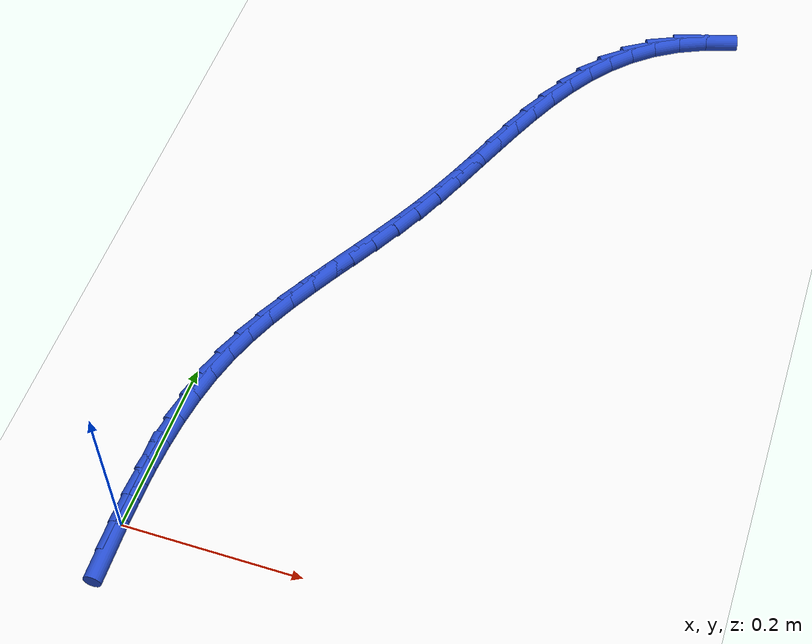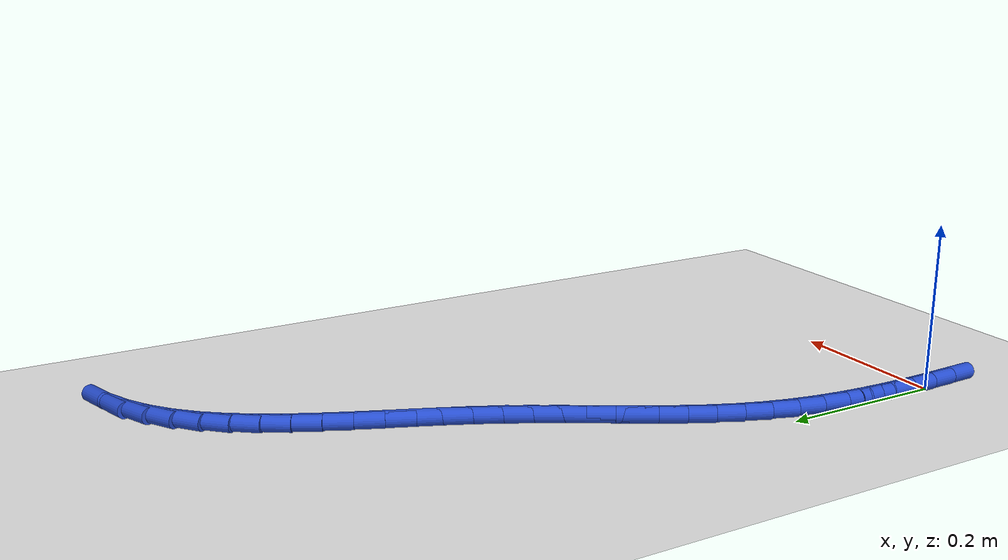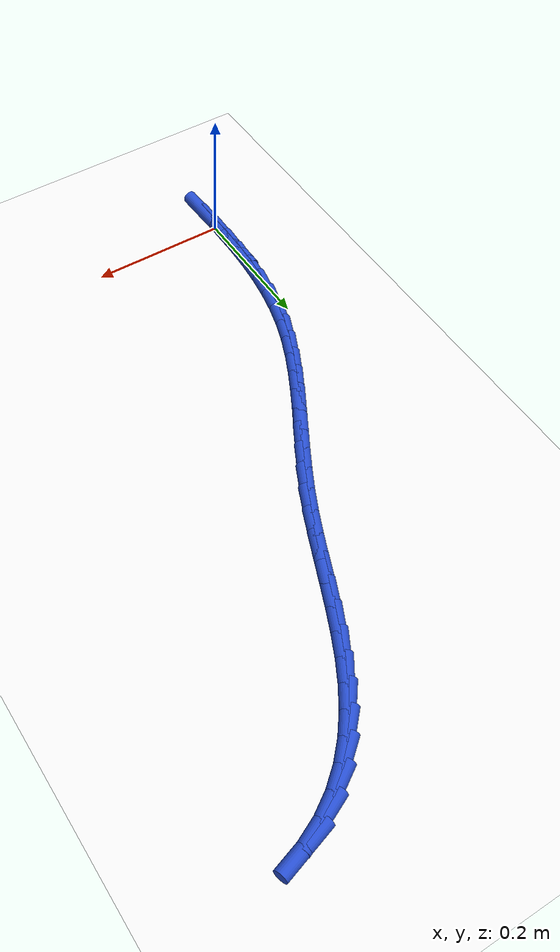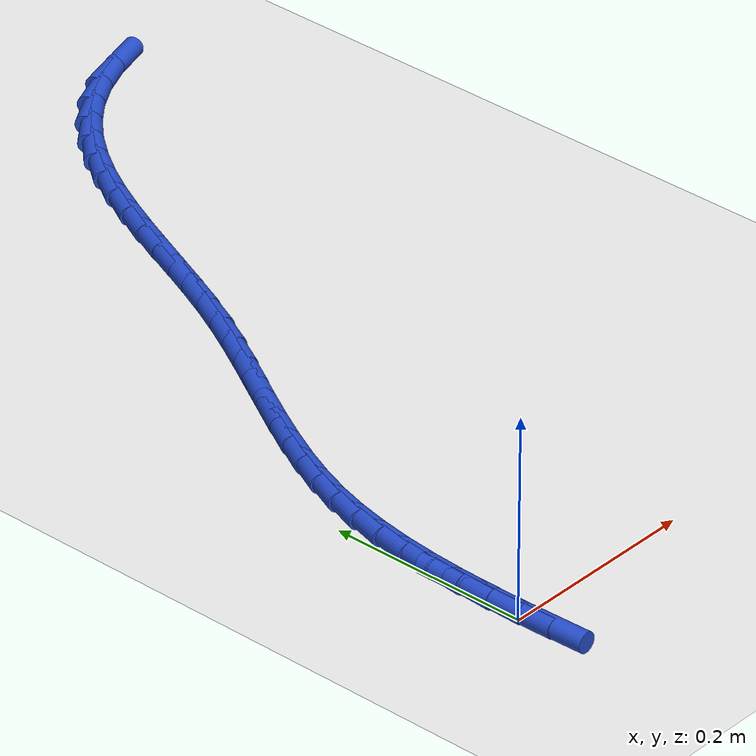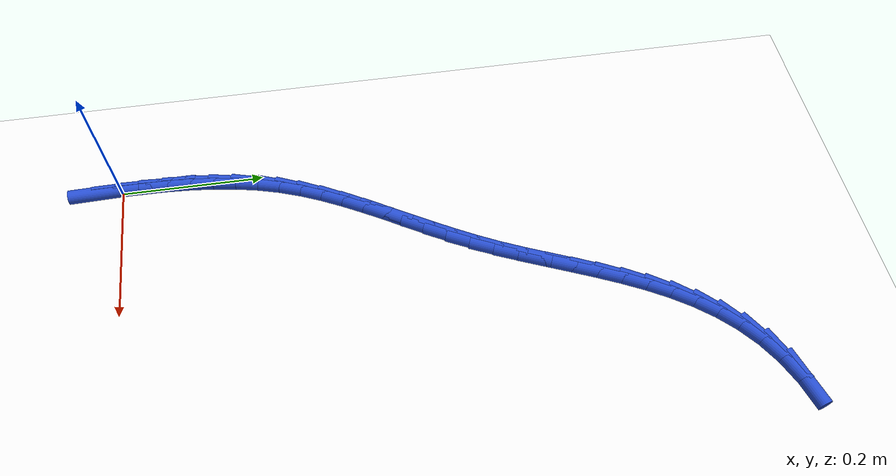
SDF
<sdf version="1.6">
 <world name="default">
  <model name="ground_plane">
   <static>1</static>
   <link name="link">
    <collision name="collision">
     <geometry><plane><normal>0 0 1</normal><size>100 100</size></plane></geometry>
     <surface><friction><ode><mu>100</mu><mu2>50</mu2></ode></friction></surface>
    </collision>
    <visual name="visual">
     <cast_shadows>0</cast_shadows>
     <geometry><plane><normal>0 0 1</normal><size>100 100</size></plane></geometry>
     <material>
      <script><uri>file://media/materials/scripts/gazebo.material</uri><name>Gazebo/WhiteGlow</name></script>
     </material>
    </visual>
   </link>
  </model>
  <model name="line">
   <link name="link_0">
    <pose>-9.107298248878237e-18 -6.245004513516506e-17 0.01 0 1.57 -1.5658944839849958</pose>
    <collision name="collision">
     <geometry><cylinder><radius>0.01</radius><length>0.08</length></cylinder></geometry>
    </collision>
    <visual name="visual">
     <material>
      <script><name>Gazebo/Blue</name><uri>file://media/materials/scripts/gazebo.material</uri></script>
     </material>
     <geometry><cylinder><radius>0.01</radius><length>0.08</length></cylinder></geometry>
    </visual>
   </link>
   <link name="link_1">
    <pose>-0.00016155652832458892 0.03295806100365336 0.01 0 1.57 1.5474566577063693</pose>
    <collision name="collision">
     <geometry><cylinder><radius>0.01</radius><length>0.08</length></cylinder></geometry>
    </collision>
    <visual name="visual">
     <material>
      <script><name>Gazebo/Blue</name><uri>file://media/materials/scripts/gazebo.material</uri></script>
     </material>
     <geometry><cylinder><radius>0.01</radius><length>0.08</length></cylinder></geometry>
    </visual>
   </link>
   <link name="link_2">
    <pose>0.0006087739015508442 0.06595726700076039 0.01 0 1.57 1.5124248729891052</pose>
    <collision name="collision">
     <geometry><cylinder><radius>0.01</radius><length>0.08</length></cylinder></geometry>
    </collision>
    <visual name="visual">
     <material>
      <script><name>Gazebo/Blue</name><uri>file://media/materials/scripts/gazebo.material</uri></script>
     </material>
     <geometry><cylinder><radius>0.01</radius><length>0.08</length></cylinder></geometry>
    </visual>
   </link>
   <link name="link_3">
    <pose>0.002529834421990248 0.09883083909902339 0.01 0 1.57 1.4701395982767924</pose>
    <collision name="collision">
     <geometry><cylinder><radius>0.01</radius><length>0.08</length></cylinder></geometry>
    </collision>
    <visual name="visual">
     <material>
      <script><name>Gazebo/Blue</name><uri>file://media/materials/scripts/gazebo.material</uri></script>
     </material>
     <geometry><cylinder><radius>0.01</radius><length>0.08</length></cylinder></geometry>
    </visual>
   </link>
   <link name="link_4">
    <pose>0.005820468165357586 0.13141199840614484 0.01 0 1.57 1.4200571307159806</pose>
    <collision name="collision">
     <geometry><cylinder><radius>0.01</radius><length>0.08</length></cylinder></geometry>
    </collision>
    <visual name="visual">
     <material>
      <script><name>Gazebo/Blue</name><uri>file://media/materials/scripts/gazebo.material</uri></script>
     </material>
     <geometry><cylinder><radius>0.01</radius><length>0.08</length></cylinder></geometry>
    </visual>
   </link>
   <link name="link_5">
    <pose>0.010699518264016817 0.16353396602982717 0.01 0 1.57 1.3616111288394246</pose>
    <collision name="collision">
     <geometry><cylinder><radius>0.01</radius><length>0.08</length></cylinder></geometry>
    </collision>
    <visual name="visual">
     <material>
      <script><name>Gazebo/Blue</name><uri>file://media/materials/scripts/gazebo.material</uri></script>
     </material>
     <geometry><cylinder><radius>0.01</radius><length>0.08</length></cylinder></geometry>
    </visual>
   </link>
   <link name="link_6">
    <pose>0.017385827850331905 0.19502996307777282 0.01 0 1.57 1.294306598906461</pose>
    <collision name="collision">
     <geometry><cylinder><radius>0.01</radius><length>0.08</length></cylinder></geometry>
    </collision>
    <visual name="visual">
     <material>
      <script><name>Gazebo/Blue</name><uri>file://media/materials/scripts/gazebo.material</uri></script>
     </material>
     <geometry><cylinder><radius>0.01</radius><length>0.08</length></cylinder></geometry>
    </visual>
   </link>
   <link name="link_7">
    <pose>0.02609812848399147 0.2257332823142468 0.01 0 1.57 1.2224607399121636</pose>
    <collision name="collision">
     <geometry><cylinder><radius>0.01</radius><length>0.08</length></cylinder></geometry>
    </collision>
    <visual name="visual">
     <material>
      <script><name>Gazebo/Blue</name><uri>file://media/materials/scripts/gazebo.material</uri></script>
     </material>
     <geometry><cylinder><radius>0.01</radius><length>0.08</length></cylinder></geometry>
    </visual>
   </link>
   <link name="link_8">
    <pose>0.036928890658805155 0.2555583065548617 0.01 0 1.57 1.160038678555661</pose>
    <collision name="collision">
     <geometry><cylinder><radius>0.01</radius><length>0.08</length></cylinder></geometry>
    </collision>
    <visual name="visual">
     <material>
      <script><name>Gazebo/Blue</name><uri>file://media/materials/scripts/gazebo.material</uri></script>
     </material>
     <geometry><cylinder><radius>0.01</radius><length>0.08</length></cylinder></geometry>
    </visual>
   </link>
   <link name="link_9">
    <pose>0.04960194979171867 0.2846561712285821 0.01 0 1.57 1.1102378742927024</pose>
    <collision name="collision">
     <geometry><cylinder><radius>0.01</radius><length>0.08</length></cylinder></geometry>
    </collision>
    <visual name="visual">
     <material>
      <script><name>Gazebo/Blue</name><uri>file://media/materials/scripts/gazebo.material</uri></script>
     </material>
     <geometry><cylinder><radius>0.01</radius><length>0.08</length></cylinder></geometry>
    </visual>
   </link>
   <link name="link_10">
    <pose>0.06377422615985905 0.31322098742029647 0.01 0 1.57 1.073295075942822</pose>
    <collision name="collision">
     <geometry><cylinder><radius>0.01</radius><length>0.08</length></cylinder></geometry>
    </collision>
    <visual name="visual">
     <material>
      <script><name>Gazebo/Blue</name><uri>file://media/materials/scripts/gazebo.material</uri></script>
     </material>
     <geometry><cylinder><radius>0.01</radius><length>0.08</length></cylinder></geometry>
    </visual>
   </link>
   <link name="link_11">
    <pose>0.0791026400403533 0.3414468662148935 0.01 0 1.57 1.0490994446726534</pose>
    <collision name="collision">
     <geometry><cylinder><radius>0.01</radius><length>0.08</length></cylinder></geometry>
    </collision>
    <visual name="visual">
     <material>
      <script><name>Gazebo/Blue</name><uri>file://media/materials/scripts/gazebo.material</uri></script>
     </material>
     <geometry><cylinder><radius>0.01</radius><length>0.08</length></cylinder></geometry>
    </visual>
   </link>
   <link name="link_12">
    <pose>0.09524411171032846 0.3695279186972616 0.01 0 1.57 1.0373786063809063</pose>
    <collision name="collision">
     <geometry><cylinder><radius>0.01</radius><length>0.08</length></cylinder></geometry>
    </collision>
    <visual name="visual">
     <material>
      <script><name>Gazebo/Blue</name><uri>file://media/materials/scripts/gazebo.material</uri></script>
     </material>
     <geometry><cylinder><radius>0.01</radius><length>0.08</length></cylinder></geometry>
    </visual>
   </link>
   <link name="link_13">
    <pose>0.11185556144691154 0.39765825595228954 0.01 0 1.57 1.0378185432117668</pose>
    <collision name="collision">
     <geometry><cylinder><radius>0.01</radius><length>0.08</length></cylinder></geometry>
    </collision>
    <visual name="visual">
     <material>
      <script><name>Gazebo/Blue</name><uri>file://media/materials/scripts/gazebo.material</uri></script>
     </material>
     <geometry><cylinder><radius>0.01</radius><length>0.08</length></cylinder></geometry>
    </visual>
   </link>
   <link name="link_14">
    <pose>0.1285939095272296 0.4260319890648658 0.01 0 1.57 1.050118261876973</pose>
    <collision name="collision">
     <geometry><cylinder><radius>0.01</radius><length>0.08</length></cylinder></geometry>
    </collision>
    <visual name="visual">
     <material>
      <script><name>Gazebo/Blue</name><uri>file://media/materials/scripts/gazebo.material</uri></script>
     </material>
     <geometry><cylinder><radius>0.01</radius><length>0.08</length></cylinder></geometry>
    </visual>
   </link>
   <link name="link_15">
    <pose>0.14511607622840958 0.45484322911987884 0.01 0 1.57 1.0739878810053047</pose>
    <collision name="collision">
     <geometry><cylinder><radius>0.01</radius><length>0.08</length></cylinder></geometry>
    </collision>
    <visual name="visual">
     <material>
      <script><name>Gazebo/Blue</name><uri>file://media/materials/scripts/gazebo.material</uri></script>
     </material>
     <geometry><cylinder><radius>0.01</radius><length>0.08</length></cylinder></geometry>
    </visual>
   </link>
   <link name="link_16">
    <pose>0.16107898182757863 0.4842860872022175 0.01 0 1.57 1.108871123853095</pose>
    <collision name="collision">
     <geometry><cylinder><radius>0.01</radius><length>0.08</length></cylinder></geometry>
    </collision>
    <visual name="visual">
     <material>
      <script><name>Gazebo/Blue</name><uri>file://media/materials/scripts/gazebo.material</uri></script>
     </material>
     <geometry><cylinder><radius>0.01</radius><length>0.08</length></cylinder></geometry>
    </visual>
   </link>
   <link name="link_17">
    <pose>0.1761458402041488 0.5145500088563273 0.01 0 1.57 1.1441048032050112</pose>
    <collision name="collision">
     <geometry><cylinder><radius>0.01</radius><length>0.08</length></cylinder></geometry>
    </collision>
    <visual name="visual">
     <material>
      <script><name>Gazebo/Blue</name><uri>file://media/materials/scripts/gazebo.material</uri></script>
     </material>
     <geometry><cylinder><radius>0.01</radius><length>0.08</length></cylinder></geometry>
    </visual>
   </link>
   <link name="link_18">
    <pose>0.1902671025750306 0.5456115063407476 0.01 0 1.57 1.1656597654194376</pose>
    <collision name="collision">
     <geometry><cylinder><radius>0.01</radius><length>0.08</length></cylinder></geometry>
    </collision>
    <visual name="visual">
     <material>
      <script><name>Gazebo/Blue</name><uri>file://media/materials/scripts/gazebo.material</uri></script>
     </material>
     <geometry><cylinder><radius>0.01</radius><length>0.08</length></cylinder></geometry>
    </visual>
   </link>
   <link name="link_19">
    <pose>0.20379303893328274 0.5771507003428037 0.01 0 1.57 1.1729823307309297</pose>
    <collision name="collision">
     <geometry><cylinder><radius>0.01</radius><length>0.08</length></cylinder></geometry>
    </collision>
    <visual name="visual">
     <material>
      <script><name>Gazebo/Blue</name><uri>file://media/materials/scripts/gazebo.material</uri></script>
     </material>
     <geometry><cylinder><radius>0.01</radius><length>0.08</length></cylinder></geometry>
    </visual>
   </link>
   <link name="link_20">
    <pose>0.21710350393702937 0.6088257800001147 0.01 0 1.57 1.1662249180799666</pose>
    <collision name="collision">
     <geometry><cylinder><radius>0.01</radius><length>0.08</length></cylinder></geometry>
    </collision>
    <visual name="visual">
     <material>
      <script><name>Gazebo/Blue</name><uri>file://media/materials/scripts/gazebo.material</uri></script>
     </material>
     <geometry><cylinder><radius>0.01</radius><length>0.08</length></cylinder></geometry>
    </visual>
   </link>
   <link name="link_21">
    <pose>0.23057835224439466 0.6402949344502994 0.01 0 1.57 1.1451369291719409</pose>
    <collision name="collision">
     <geometry><cylinder><radius>0.01</radius><length>0.08</length></cylinder></geometry>
    </collision>
    <visual name="visual">
     <material>
      <script><name>Gazebo/Blue</name><uri>file://media/materials/scripts/gazebo.material</uri></script>
     </material>
     <geometry><cylinder><radius>0.01</radius><length>0.08</length></cylinder></geometry>
    </visual>
   </link>
   <link name="link_22">
    <pose>0.24459743851350257 0.6712163528309769 0.01 0 1.57 1.1090887185943108</pose>
    <collision name="collision">
     <geometry><cylinder><radius>0.01</radius><length>0.08</length></cylinder></geometry>
    </collision>
    <visual name="visual">
     <material>
      <script><name>Gazebo/Blue</name><uri>file://media/materials/scripts/gazebo.material</uri></script>
     </material>
     <geometry><cylinder><radius>0.01</radius><length>0.08</length></cylinder></geometry>
    </visual>
   </link>
   <link name="link_23">
    <pose>0.25954061740247736 0.7012482242797664 0.01 0 1.57 1.05717234348854</pose>
    <collision name="collision">
     <geometry><cylinder><radius>0.01</radius><length>0.08</length></cylinder></geometry>
    </collision>
    <visual name="visual">
     <material>
      <script><name>Gazebo/Blue</name><uri>file://media/materials/scripts/gazebo.material</uri></script>
     </material>
     <geometry><cylinder><radius>0.01</radius><length>0.08</length></cylinder></geometry>
    </visual>
   </link>
   <link name="link_24">
    <pose>0.2757877435694432 0.7300487379342866 0.01 0 1.57 0.9884248001463394</pose>
    <collision name="collision">
     <geometry><cylinder><radius>0.01</radius><length>0.08</length></cylinder></geometry>
    </collision>
    <visual name="visual">
     <material>
      <script><name>Gazebo/Blue</name><uri>file://media/materials/scripts/gazebo.material</uri></script>
     </material>
     <geometry><cylinder><radius>0.01</radius><length>0.08</length></cylinder></geometry>
    </visual>
   </link>
   <link name="link_25">
    <pose>0.293718671672524 0.7572760829321569 0.01 0 1.57 0.9022358878521407</pose>
    <collision name="collision">
     <geometry><cylinder><radius>0.01</radius><length>0.08</length></cylinder></geometry>
    </collision>
    <visual name="visual">
     <material>
      <script><name>Gazebo/Blue</name><uri>file://media/materials/scripts/gazebo.material</uri></script>
     </material>
     <geometry><cylinder><radius>0.01</radius><length>0.08</length></cylinder></geometry>
    </visual>
   </link>
   <link name="link_26">
    <pose>0.31371325636984404 0.7825884484109962 0.01 0 1.57 0.7989701882500563</pose>
    <collision name="collision">
     <geometry><cylinder><radius>0.01</radius><length>0.08</length></cylinder></geometry>
    </collision>
    <visual name="visual">
     <material>
      <script><name>Gazebo/Blue</name><uri>file://media/materials/scripts/gazebo.material</uri></script>
     </material>
     <geometry><cylinder><radius>0.01</radius><length>0.08</length></cylinder></geometry>
    </visual>
   </link>
   <link name="link_27">
    <pose>0.3361513523195273 0.8056440235084233 0.01 0 1.57 0.6806938380511588</pose>
    <collision name="collision">
     <geometry><cylinder><radius>0.01</radius><length>0.08</length></cylinder></geometry>
    </collision>
    <visual name="visual">
     <material>
      <script><name>Gazebo/Blue</name><uri>file://media/materials/scripts/gazebo.material</uri></script>
     </material>
     <geometry><cylinder><radius>0.01</radius><length>0.08</length></cylinder></geometry>
    </visual>
   </link>
   <link name="link_28">
    <pose>0.36141281417969817 0.8261009973620578 0.01 0 1.57 0.5516507551160256</pose>
    <collision name="collision">
     <geometry><cylinder><radius>0.01</radius><length>0.08</length></cylinder></geometry>
    </collision>
    <visual name="visual">
     <material>
      <script><name>Gazebo/Blue</name><uri>file://media/materials/scripts/gazebo.material</uri></script>
     </material>
     <geometry><cylinder><radius>0.01</radius><length>0.08</length></cylinder></geometry>
    </visual>
   </link>
   <link name="link_29">
    <pose>0.38987749660848037 0.8436175591095181 0.01 0 1.57 0.41798695435497035</pose>
    <collision name="collision">
     <geometry><cylinder><radius>0.01</radius><length>0.08</length></cylinder></geometry>
    </collision>
    <visual name="visual">
     <material>
      <script><name>Gazebo/Blue</name><uri>file://media/materials/scripts/gazebo.material</uri></script>
     </material>
     <geometry><cylinder><radius>0.01</radius><length>0.08</length></cylinder></geometry>
    </visual>
   </link>
   <link name="link_30">
    <pose>0.42192525426399846 0.8578518978884235 0.01 0 1.57 0.29323474519452153</pose>
    <collision name="collision">
     <geometry><cylinder><radius>0.01</radius><length>0.08</length></cylinder></geometry>
    </collision>
    <visual name="visual">
     <material>
      <script><name>Gazebo/Blue</name><uri>file://media/materials/scripts/gazebo.material</uri></script>
     </material>
     <geometry><cylinder><radius>0.01</radius><length>0.08</length></cylinder></geometry>
    </visual>
   </link>
   <link name="link_279">
    <pose>0.0009242118120527131 -0.03278029728144565 0.01 0 1.57 -1.542609668423676</pose>
    <collision name="collision">
     <geometry><cylinder><radius>0.01</radius><length>0.08</length></cylinder></geometry>
    </collision>
    <visual name="visual">
     <material>
      <script><name>Gazebo/Blue</name><uri>file://media/materials/scripts/gazebo.material</uri></script>
     </material>
     <geometry><cylinder><radius>0.01</radius><length>0.08</length></cylinder></geometry>
    </visual>
   </link>
   <link name="link_280">
    <pose>-4.336808689942018e-18 -6.938893903907228e-17 0.01 0 1.57 -1.5643950994936202</pose>
    <collision name="collision">
     <geometry><cylinder><radius>0.01</radius><length>0.08</length></cylinder></geometry>
    </collision>
    <visual name="visual">
     <material>
      <script><name>Gazebo/Blue</name><uri>file://media/materials/scripts/gazebo.material</uri></script>
     </material>
     <geometry><cylinder><radius>0.01</radius><length>0.08</length></cylinder></geometry>
    </visual>
   </link>
   <link name="link_281">
    <pose>-0.00021116798621667598 0.03298822116719667 0.01 0 1.57 1.558058501530479</pose>
    <collision name="collision">
     <geometry><cylinder><radius>0.01</radius><length>0.08</length></cylinder></geometry>
    </collision>
    <visual name="visual">
     <material>
      <script><name>Gazebo/Blue</name><uri>file://media/materials/scripts/gazebo.material</uri></script>
     </material>
     <geometry><cylinder><radius>0.01</radius><length>0.08</length></cylinder></geometry>
    </visual>
   </link>
   <link name="link_282">
    <pose>0.00021188223841411358 0.06619854830910753 0.01 0 1.57 1.5675956294943405</pose>
    <collision name="collision">
     <geometry><cylinder><radius>0.01</radius><length>0.08</length></cylinder></geometry>
    </collision>
    <visual name="visual">
     <material>
      <script><name>Gazebo/Blue</name><uri>file://media/materials/scripts/gazebo.material</uri></script>
     </material>
     <geometry><cylinder><radius>0.01</radius><length>0.08</length></cylinder></geometry>
    </visual>
   </link>
  </model>
 </world>
</sdf>
